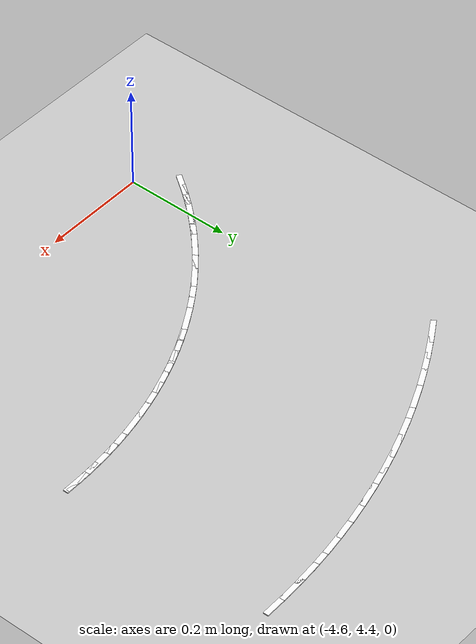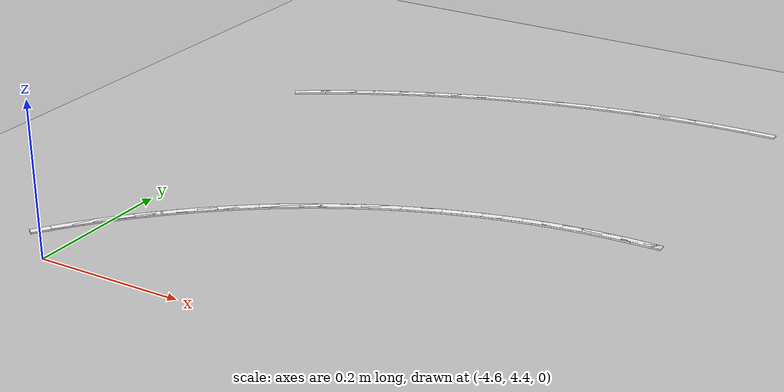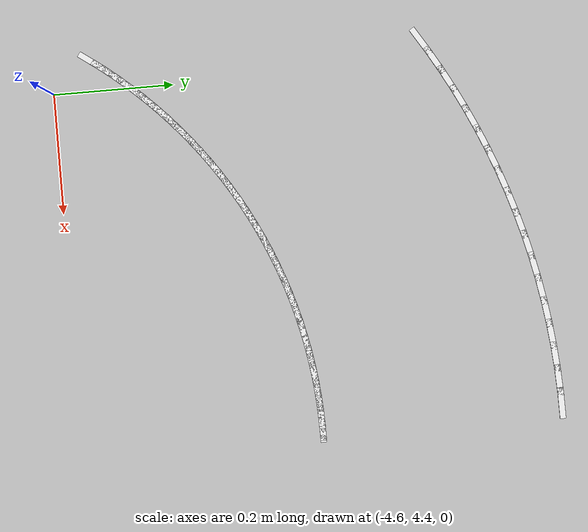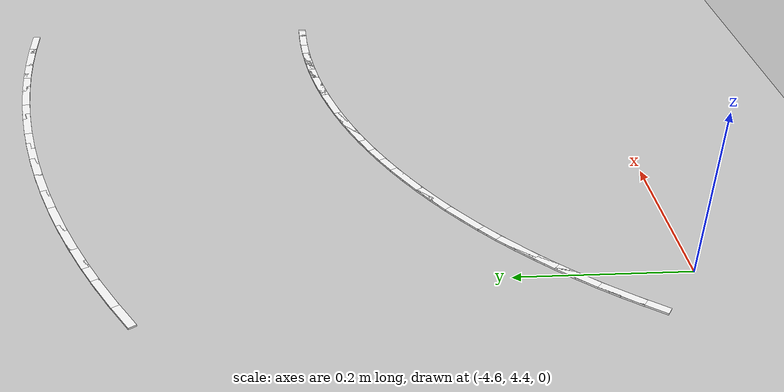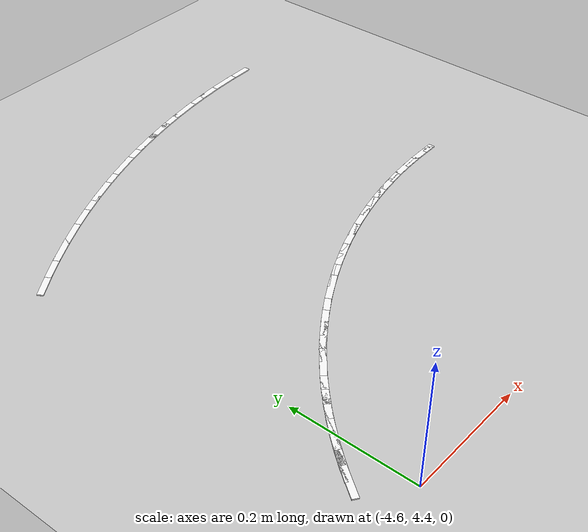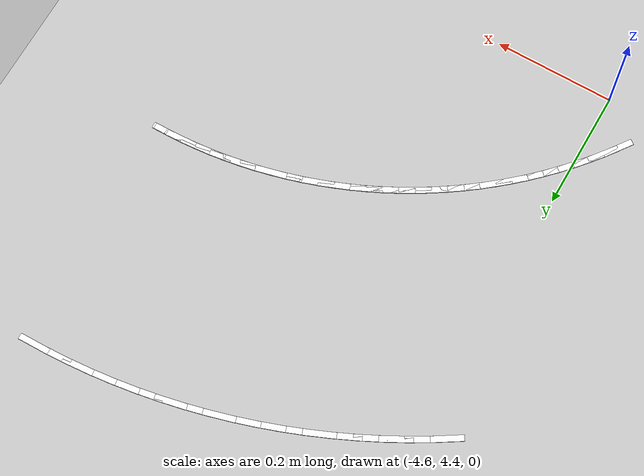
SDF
<sdf version="1.7">
 <world name="default">
  <model name="ground_plane">
   <static>1</static>
   <link name="link">
    <collision name="collision">
     <geometry><plane><normal>0 0 1</normal><size>100 100</size></plane></geometry>
     <surface>
      <contact><collide_bitmask>65535</collide_bitmask></contact>
      <friction><ode><mu>100</mu><mu2>50</mu2></ode></friction>
     </surface>
    </collision>
    <visual name="visual">
     <cast_shadows>0</cast_shadows>
     <geometry><plane><normal>0 0 1</normal><size>100 100</size></plane></geometry>
     <material>
      <script><uri>file://media/materials/scripts/gazebo.material</uri><name>Gazebo/Grey</name></script>
     </material>
    </visual>
   </link>
  </model>
  <model name="lane_line_right_249">
   <static>1</static>
   <link name="link">
    <pose>0 0 -0.004 0 -0 0</pose>
    <visual name="visual">
     <geometry><box><size>0.02 0.01 0.01</size></box></geometry>
     <material><ambient>1 1 1 1</ambient><diffuse>1 1 1 1</diffuse></material>
    </visual>
    <collision name="collision"><geometry><box><size>0.02 0.01 0.01</size></box></geometry></collision>
   </link>
   <pose>-4 4.8 0 0 -0 0</pose>
  </model>
  <model name="lane_line_left_250">
   <static>1</static>
   <link name="link">
    <pose>0 0 -0.004 0 -0 0</pose>
    <visual name="visual">
     <geometry><box><size>0.0521 0.01 0.01</size></box></geometry>
     <material><ambient>1 1 1 1</ambient><diffuse>1 1 1 1</diffuse></material>
    </visual>
    <collision name="collision"><geometry><box><size>0.0521 0.01 0.01</size></box></geometry></collision>
   </link>
   <pose>-4.01282 4.79977 0 0 0 -3.12556</pose>
  </model>
  <model name="lane_line_right_250">
   <static>1</static>
   <link name="link">
    <pose>0 0 -0.004 0 -0 0</pose>
    <visual name="visual">
     <geometry><box><size>0.0521 0.01 0.01</size></box></geometry>
     <material><ambient>1 1 1 1</ambient><diffuse>1 1 1 1</diffuse></material>
    </visual>
    <collision name="collision"><geometry><box><size>0.0521 0.01 0.01</size></box></geometry></collision>
   </link>
   <pose>-4.01923 5.19972 0 0 0 -3.12556</pose>
  </model>
  <model name="lane_line_left_251">
   <static>1</static>
   <link name="link">
    <pose>0 0 -0.004 0 -0 0</pose>
    <visual name="visual">
     <geometry><box><size>0.0521 0.01 0.01</size></box></geometry>
     <material><ambient>1 1 1 1</ambient><diffuse>1 1 1 1</diffuse></material>
    </visual>
    <collision name="collision"><geometry><box><size>0.0521 0.01 0.01</size></box></geometry></collision>
   </link>
   <pose>-4.03845 4.79895 0 0 0 -3.09351</pose>
  </model>
  <model name="lane_line_right_251">
   <static>1</static>
   <link name="link">
    <pose>0 0 -0.004 0 -0 0</pose>
    <visual name="visual">
     <geometry><box><size>0.0521 0.01 0.01</size></box></geometry>
     <material><ambient>1 1 1 1</ambient><diffuse>1 1 1 1</diffuse></material>
    </visual>
    <collision name="collision"><geometry><box><size>0.0521 0.01 0.01</size></box></geometry></collision>
   </link>
   <pose>-4.05767 5.19848 0 0 0 -3.09351</pose>
  </model>
  <model name="lane_line_left_252">
   <static>1</static>
   <link name="link">
    <pose>0 0 -0.004 0 -0 0</pose>
    <visual name="visual">
     <geometry><box><size>0.0521 0.01 0.01</size></box></geometry>
     <material><ambient>1 1 1 1</ambient><diffuse>1 1 1 1</diffuse></material>
    </visual>
    <collision name="collision"><geometry><box><size>0.0521 0.01 0.01</size></box></geometry></collision>
   </link>
   <pose>-4.06404 4.7973 0 0 0 -3.06145</pose>
  </model>
  <model name="lane_line_right_252">
   <static>1</static>
   <link name="link">
    <pose>0 0 -0.004 0 -0 0</pose>
    <visual name="visual">
     <geometry><box><size>0.0521 0.01 0.01</size></box></geometry>
     <material><ambient>1 1 1 1</ambient><diffuse>1 1 1 1</diffuse></material>
    </visual>
    <collision name="collision"><geometry><box><size>0.0521 0.01 0.01</size></box></geometry></collision>
   </link>
   <pose>-4.09606 5.19602 0 0 0 -3.06145</pose>
  </model>
  <model name="lane_line_left_253">
   <static>1</static>
   <link name="link">
    <pose>0 0 -0.004 0 -0 0</pose>
    <visual name="visual">
     <geometry><box><size>0.0521 0.01 0.01</size></box></geometry>
     <material><ambient>1 1 1 1</ambient><diffuse>1 1 1 1</diffuse></material>
    </visual>
    <collision name="collision"><geometry><box><size>0.0521 0.01 0.01</size></box></geometry></collision>
   </link>
   <pose>-4.08956 4.79484 0 0 0 -3.02939</pose>
  </model>
  <model name="lane_line_right_253">
   <static>1</static>
   <link name="link">
    <pose>0 0 -0.004 0 -0 0</pose>
    <visual name="visual">
     <geometry><box><size>0.0521 0.01 0.01</size></box></geometry>
     <material><ambient>1 1 1 1</ambient><diffuse>1 1 1 1</diffuse></material>
    </visual>
    <collision name="collision"><geometry><box><size>0.0521 0.01 0.01</size></box></geometry></collision>
   </link>
   <pose>-4.13434 5.19233 0 0 0 -3.02939</pose>
  </model>
  <model name="lane_line_left_254">
   <static>1</static>
   <link name="link">
    <pose>0 0 -0.004 0 -0 0</pose>
    <visual name="visual">
     <geometry><box><size>0.0521 0.01 0.01</size></box></geometry>
     <material><ambient>1 1 1 1</ambient><diffuse>1 1 1 1</diffuse></material>
    </visual>
    <collision name="collision"><geometry><box><size>0.0521 0.01 0.01</size></box></geometry></collision>
   </link>
   <pose>-4.11499 4.79156 0 0 0 -2.99734</pose>
  </model>
  <model name="lane_line_right_254">
   <static>1</static>
   <link name="link">
    <pose>0 0 -0.004 0 -0 0</pose>
    <visual name="visual">
     <geometry><box><size>0.0521 0.01 0.01</size></box></geometry>
     <material><ambient>1 1 1 1</ambient><diffuse>1 1 1 1</diffuse></material>
    </visual>
    <collision name="collision"><geometry><box><size>0.0521 0.01 0.01</size></box></geometry></collision>
   </link>
   <pose>-4.17249 5.18741 0 0 0 -2.99734</pose>
  </model>
  <model name="lane_line_left_255">
   <static>1</static>
   <link name="link">
    <pose>0 0 -0.004 0 -0 0</pose>
    <visual name="visual">
     <geometry><box><size>0.0521 0.01 0.01</size></box></geometry>
     <material><ambient>1 1 1 1</ambient><diffuse>1 1 1 1</diffuse></material>
    </visual>
    <collision name="collision"><geometry><box><size>0.0521 0.01 0.01</size></box></geometry></collision>
   </link>
   <pose>-4.1403 4.78747 0 0 0 -2.96528</pose>
  </model>
  <model name="lane_line_right_255">
   <static>1</static>
   <link name="link">
    <pose>0 0 -0.004 0 -0 0</pose>
    <visual name="visual">
     <geometry><box><size>0.0521 0.01 0.01</size></box></geometry>
     <material><ambient>1 1 1 1</ambient><diffuse>1 1 1 1</diffuse></material>
    </visual>
    <collision name="collision"><geometry><box><size>0.0521 0.01 0.01</size></box></geometry></collision>
   </link>
   <pose>-4.21046 5.18127 0 0 0 -2.96528</pose>
  </model>
  <model name="lane_line_left_256">
   <static>1</static>
   <link name="link">
    <pose>0 0 -0.004 0 -0 0</pose>
    <visual name="visual">
     <geometry><box><size>0.0521 0.01 0.01</size></box></geometry>
     <material><ambient>1 1 1 1</ambient><diffuse>1 1 1 1</diffuse></material>
    </visual>
    <collision name="collision"><geometry><box><size>0.0521 0.01 0.01</size></box></geometry></collision>
   </link>
   <pose>-4.16547 4.78257 0 0 0 -2.93322</pose>
  </model>
  <model name="lane_line_right_256">
   <static>1</static>
   <link name="link">
    <pose>0 0 -0.004 0 -0 0</pose>
    <visual name="visual">
     <geometry><box><size>0.0521 0.01 0.01</size></box></geometry>
     <material><ambient>1 1 1 1</ambient><diffuse>1 1 1 1</diffuse></material>
    </visual>
    <collision name="collision"><geometry><box><size>0.0521 0.01 0.01</size></box></geometry></collision>
   </link>
   <pose>-4.24821 5.17392 0 0 0 -2.93322</pose>
  </model>
  <model name="lane_line_left_257">
   <static>1</static>
   <link name="link">
    <pose>0 0 -0.004 0 -0 0</pose>
    <visual name="visual">
     <geometry><box><size>0.0521 0.01 0.01</size></box></geometry>
     <material><ambient>1 1 1 1</ambient><diffuse>1 1 1 1</diffuse></material>
    </visual>
    <collision name="collision"><geometry><box><size>0.0521 0.01 0.01</size></box></geometry></collision>
   </link>
   <pose>-4.19046 4.77686 0 0 0 -2.90116</pose>
  </model>
  <model name="lane_line_right_257">
   <static>1</static>
   <link name="link">
    <pose>0 0 -0.004 0 -0 0</pose>
    <visual name="visual">
     <geometry><box><size>0.0521 0.01 0.01</size></box></geometry>
     <material><ambient>1 1 1 1</ambient><diffuse>1 1 1 1</diffuse></material>
    </visual>
    <collision name="collision"><geometry><box><size>0.0521 0.01 0.01</size></box></geometry></collision>
   </link>
   <pose>-4.28571 5.16536 0 0 0 -2.90116</pose>
  </model>
  <model name="lane_line_left_258">
   <static>1</static>
   <link name="link">
    <pose>0 0 -0.004 0 -0 0</pose>
    <visual name="visual">
     <geometry><box><size>0.0521 0.01 0.01</size></box></geometry>
     <material><ambient>1 1 1 1</ambient><diffuse>1 1 1 1</diffuse></material>
    </visual>
    <collision name="collision"><geometry><box><size>0.0521 0.01 0.01</size></box></geometry></collision>
   </link>
   <pose>-4.21527 4.77036 0 0 0 -2.86911</pose>
  </model>
  <model name="lane_line_right_258">
   <static>1</static>
   <link name="link">
    <pose>0 0 -0.004 0 -0 0</pose>
    <visual name="visual">
     <geometry><box><size>0.0521 0.01 0.01</size></box></geometry>
     <material><ambient>1 1 1 1</ambient><diffuse>1 1 1 1</diffuse></material>
    </visual>
    <collision name="collision"><geometry><box><size>0.0521 0.01 0.01</size></box></geometry></collision>
   </link>
   <pose>-4.32292 5.1556 0 0 0 -2.86911</pose>
  </model>
  <model name="lane_line_left_259">
   <static>1</static>
   <link name="link">
    <pose>0 0 -0.004 0 -0 0</pose>
    <visual name="visual">
     <geometry><box><size>0.0521 0.01 0.01</size></box></geometry>
     <material><ambient>1 1 1 1</ambient><diffuse>1 1 1 1</diffuse></material>
    </visual>
    <collision name="collision"><geometry><box><size>0.0521 0.01 0.01</size></box></geometry></collision>
   </link>
   <pose>-4.23985 4.76306 0 0 0 -2.83705</pose>
  </model>
  <model name="lane_line_right_259">
   <static>1</static>
   <link name="link">
    <pose>0 0 -0.004 0 -0 0</pose>
    <visual name="visual">
     <geometry><box><size>0.0521 0.01 0.01</size></box></geometry>
     <material><ambient>1 1 1 1</ambient><diffuse>1 1 1 1</diffuse></material>
    </visual>
    <collision name="collision"><geometry><box><size>0.0521 0.01 0.01</size></box></geometry></collision>
   </link>
   <pose>-4.35979 5.14466 0 0 0 -2.83705</pose>
  </model>
  <model name="lane_line_left_260">
   <static>1</static>
   <link name="link">
    <pose>0 0 -0.004 0 -0 0</pose>
    <visual name="visual">
     <geometry><box><size>0.0521 0.01 0.01</size></box></geometry>
     <material><ambient>1 1 1 1</ambient><diffuse>1 1 1 1</diffuse></material>
    </visual>
    <collision name="collision"><geometry><box><size>0.0521 0.01 0.01</size></box></geometry></collision>
   </link>
   <pose>-4.26418 4.75499 0 0 0 -2.80499</pose>
  </model>
  <model name="lane_line_right_260">
   <static>1</static>
   <link name="link">
    <pose>0 0 -0.004 0 -0 0</pose>
    <visual name="visual">
     <geometry><box><size>0.0521 0.01 0.01</size></box></geometry>
     <material><ambient>1 1 1 1</ambient><diffuse>1 1 1 1</diffuse></material>
    </visual>
    <collision name="collision"><geometry><box><size>0.0521 0.01 0.01</size></box></geometry></collision>
   </link>
   <pose>-4.39629 5.13254 0 0 0 -2.80499</pose>
  </model>
  <model name="lane_line_left_261">
   <static>1</static>
   <link name="link">
    <pose>0 0 -0.004 0 -0 0</pose>
    <visual name="visual">
     <geometry><box><size>0.0521 0.01 0.01</size></box></geometry>
     <material><ambient>1 1 1 1</ambient><diffuse>1 1 1 1</diffuse></material>
    </visual>
    <collision name="collision"><geometry><box><size>0.0521 0.01 0.01</size></box></geometry></collision>
   </link>
   <pose>-4.28824 4.74613 0 0 0 -2.77294</pose>
  </model>
  <model name="lane_line_right_261">
   <static>1</static>
   <link name="link">
    <pose>0 0 -0.004 0 -0 0</pose>
    <visual name="visual">
     <geometry><box><size>0.0521 0.01 0.01</size></box></geometry>
     <material><ambient>1 1 1 1</ambient><diffuse>1 1 1 1</diffuse></material>
    </visual>
    <collision name="collision"><geometry><box><size>0.0521 0.01 0.01</size></box></geometry></collision>
   </link>
   <pose>-4.43239 5.11926 0 0 0 -2.77294</pose>
  </model>
  <model name="lane_line_left_262">
   <static>1</static>
   <link name="link">
    <pose>0 0 -0.004 0 -0 0</pose>
    <visual name="visual">
     <geometry><box><size>0.0521 0.01 0.01</size></box></geometry>
     <material><ambient>1 1 1 1</ambient><diffuse>1 1 1 1</diffuse></material>
    </visual>
    <collision name="collision"><geometry><box><size>0.0521 0.01 0.01</size></box></geometry></collision>
   </link>
   <pose>-4.31201 4.73651 0 0 0 -2.74088</pose>
  </model>
  <model name="lane_line_right_262">
   <static>1</static>
   <link name="link">
    <pose>0 0 -0.004 0 -0 0</pose>
    <visual name="visual">
     <geometry><box><size>0.0521 0.01 0.01</size></box></geometry>
     <material><ambient>1 1 1 1</ambient><diffuse>1 1 1 1</diffuse></material>
    </visual>
    <collision name="collision"><geometry><box><size>0.0521 0.01 0.01</size></box></geometry></collision>
   </link>
   <pose>-4.46804 5.10482 0 0 0 -2.74088</pose>
  </model>
  <model name="lane_line_left_263">
   <static>1</static>
   <link name="link">
    <pose>0 0 -0.004 0 -0 0</pose>
    <visual name="visual">
     <geometry><box><size>0.0521 0.01 0.01</size></box></geometry>
     <material><ambient>1 1 1 1</ambient><diffuse>1 1 1 1</diffuse></material>
    </visual>
    <collision name="collision"><geometry><box><size>0.0521 0.01 0.01</size></box></geometry></collision>
   </link>
   <pose>-4.33546 4.72613 0 0 0 -2.70882</pose>
  </model>
  <model name="lane_line_right_263">
   <static>1</static>
   <link name="link">
    <pose>0 0 -0.004 0 -0 0</pose>
    <visual name="visual">
     <geometry><box><size>0.0521 0.01 0.01</size></box></geometry>
     <material><ambient>1 1 1 1</ambient><diffuse>1 1 1 1</diffuse></material>
    </visual>
    <collision name="collision"><geometry><box><size>0.0521 0.01 0.01</size></box></geometry></collision>
   </link>
   <pose>-4.50321 5.08925 0 0 0 -2.70882</pose>
  </model>
  <model name="lane_line_left_264">
   <static>1</static>
   <link name="link">
    <pose>0 0 -0.004 0 -0 0</pose>
    <visual name="visual">
     <geometry><box><size>0.0521 0.01 0.01</size></box></geometry>
     <material><ambient>1 1 1 1</ambient><diffuse>1 1 1 1</diffuse></material>
    </visual>
    <collision name="collision"><geometry><box><size>0.0521 0.01 0.01</size></box></geometry></collision>
   </link>
   <pose>-4.35856 4.715 0 0 0 -2.67677</pose>
  </model>
  <model name="lane_line_right_264">
   <static>1</static>
   <link name="link">
    <pose>0 0 -0.004 0 -0 0</pose>
    <visual name="visual">
     <geometry><box><size>0.0521 0.01 0.01</size></box></geometry>
     <material><ambient>1 1 1 1</ambient><diffuse>1 1 1 1</diffuse></material>
    </visual>
    <collision name="collision"><geometry><box><size>0.0521 0.01 0.01</size></box></geometry></collision>
   </link>
   <pose>-4.53786 5.07256 0 0 0 -2.67677</pose>
  </model>
  <model name="lane_line_left_265">
   <static>1</static>
   <link name="link">
    <pose>0 0 -0.004 0 -0 0</pose>
    <visual name="visual">
     <geometry><box><size>0.0521 0.01 0.01</size></box></geometry>
     <material><ambient>1 1 1 1</ambient><diffuse>1 1 1 1</diffuse></material>
    </visual>
    <collision name="collision"><geometry><box><size>0.0521 0.01 0.01</size></box></geometry></collision>
   </link>
   <pose>-4.38129 4.70314 0 0 0 -2.64471</pose>
  </model>
  <model name="lane_line_right_265">
   <static>1</static>
   <link name="link">
    <pose>0 0 -0.004 0 -0 0</pose>
    <visual name="visual">
     <geometry><box><size>0.0521 0.01 0.01</size></box></geometry>
     <material><ambient>1 1 1 1</ambient><diffuse>1 1 1 1</diffuse></material>
    </visual>
    <collision name="collision"><geometry><box><size>0.0521 0.01 0.01</size></box></geometry></collision>
   </link>
   <pose>-4.57197 5.05477 0 0 0 -2.64471</pose>
  </model>
  <model name="lane_line_left_266">
   <static>1</static>
   <link name="link">
    <pose>0 0 -0.004 0 -0 0</pose>
    <visual name="visual">
     <geometry><box><size>0.0521 0.01 0.01</size></box></geometry>
     <material><ambient>1 1 1 1</ambient><diffuse>1 1 1 1</diffuse></material>
    </visual>
    <collision name="collision"><geometry><box><size>0.0521 0.01 0.01</size></box></geometry></collision>
   </link>
   <pose>-4.40363 4.69056 0 0 0 -2.61265</pose>
  </model>
  <model name="lane_line_right_266">
   <static>1</static>
   <link name="link">
    <pose>0 0 -0.004 0 -0 0</pose>
    <visual name="visual">
     <geometry><box><size>0.0521 0.01 0.01</size></box></geometry>
     <material><ambient>1 1 1 1</ambient><diffuse>1 1 1 1</diffuse></material>
    </visual>
    <collision name="collision"><geometry><box><size>0.0521 0.01 0.01</size></box></geometry></collision>
   </link>
   <pose>-4.60548 5.0359 0 0 0 -2.61265</pose>
  </model>
  <model name="lane_line_left_267">
   <static>1</static>
   <link name="link">
    <pose>0 0 -0.004 0 -0 0</pose>
    <visual name="visual">
     <geometry><box><size>0.0521 0.01 0.01</size></box></geometry>
     <material><ambient>1 1 1 1</ambient><diffuse>1 1 1 1</diffuse></material>
    </visual>
    <collision name="collision"><geometry><box><size>0.0521 0.01 0.01</size></box></geometry></collision>
   </link>
   <pose>-4.42556 4.67727 0 0 0 -2.58059</pose>
  </model>
  <model name="lane_line_right_267">
   <static>1</static>
   <link name="link">
    <pose>0 0 -0.004 0 -0 0</pose>
    <visual name="visual">
     <geometry><box><size>0.0521 0.01 0.01</size></box></geometry>
     <material><ambient>1 1 1 1</ambient><diffuse>1 1 1 1</diffuse></material>
    </visual>
    <collision name="collision"><geometry><box><size>0.0521 0.01 0.01</size></box></geometry></collision>
   </link>
   <pose>-4.63837 5.01596 0 0 0 -2.58059</pose>
  </model>
  <model name="lane_line_left_268">
   <static>1</static>
   <link name="link">
    <pose>0 0 -0.004 0 -0 0</pose>
    <visual name="visual">
     <geometry><box><size>0.0521 0.01 0.01</size></box></geometry>
     <material><ambient>1 1 1 1</ambient><diffuse>1 1 1 1</diffuse></material>
    </visual>
    <collision name="collision"><geometry><box><size>0.0521 0.01 0.01</size></box></geometry></collision>
   </link>
   <pose>-4.44705 4.66328 0 0 0 -2.54854</pose>
  </model>
  <model name="lane_line_left_269">
   <static>1</static>
   <link name="link">
    <pose>0 0 -0.004 0 -0 0</pose>
    <visual name="visual">
     <geometry><box><size>0.0521 0.01 0.01</size></box></geometry>
     <material><ambient>1 1 1 1</ambient><diffuse>1 1 1 1</diffuse></material>
    </visual>
    <collision name="collision"><geometry><box><size>0.0521 0.01 0.01</size></box></geometry></collision>
   </link>
   <pose>-4.46808 4.64861 0 0 0 -2.51648</pose>
  </model>
  <model name="lane_line_left_270">
   <static>1</static>
   <link name="link">
    <pose>0 0 -0.004 0 -0 0</pose>
    <visual name="visual">
     <geometry><box><size>0.0521 0.01 0.01</size></box></geometry>
     <material><ambient>1 1 1 1</ambient><diffuse>1 1 1 1</diffuse></material>
    </visual>
    <collision name="collision"><geometry><box><size>0.0521 0.01 0.01</size></box></geometry></collision>
   </link>
   <pose>-4.48862 4.63328 0 0 0 -2.48442</pose>
  </model>
  <model name="lane_line_left_271">
   <static>1</static>
   <link name="link">
    <pose>0 0 -0.004 0 -0 0</pose>
    <visual name="visual">
     <geometry><box><size>0.0521 0.01 0.01</size></box></geometry>
     <material><ambient>1 1 1 1</ambient><diffuse>1 1 1 1</diffuse></material>
    </visual>
    <collision name="collision"><geometry><box><size>0.0521 0.01 0.01</size></box></geometry></collision>
   </link>
   <pose>-4.50867 4.61729 0 0 0 -2.45237</pose>
  </model>
  <model name="lane_line_left_272">
   <static>1</static>
   <link name="link">
    <pose>0 0 -0.004 0 -0 0</pose>
    <visual name="visual">
     <geometry><box><size>0.0521 0.01 0.01</size></box></geometry>
     <material><ambient>1 1 1 1</ambient><diffuse>1 1 1 1</diffuse></material>
    </visual>
    <collision name="collision"><geometry><box><size>0.0521 0.01 0.01</size></box></geometry></collision>
   </link>
   <pose>-4.52819 4.60067 0 0 0 -2.42031</pose>
  </model>
  <model name="lane_line_left_273">
   <static>1</static>
   <link name="link">
    <pose>0 0 -0.004 0 -0 0</pose>
    <visual name="visual">
     <geometry><box><size>0.0521 0.01 0.01</size></box></geometry>
     <material><ambient>1 1 1 1</ambient><diffuse>1 1 1 1</diffuse></material>
    </visual>
    <collision name="collision"><geometry><box><size>0.0521 0.01 0.01</size></box></geometry></collision>
   </link>
   <pose>-4.54718 4.58343 0 0 0 -2.38825</pose>
  </model>
  <model name="lane_line_left_274">
   <static>1</static>
   <link name="link">
    <pose>0 0 -0.004 0 -0 0</pose>
    <visual name="visual">
     <geometry><box><size>0.0521 0.01 0.01</size></box></geometry>
     <material><ambient>1 1 1 1</ambient><diffuse>1 1 1 1</diffuse></material>
    </visual>
    <collision name="collision"><geometry><box><size>0.0521 0.01 0.01</size></box></geometry></collision>
   </link>
   <pose>-4.56559 4.56559 0 0 0 -2.35619</pose>
  </model>
  <model name="lane_line_left_275">
   <static>1</static>
   <link name="link">
    <pose>0 0 -0.004 0 -0 0</pose>
    <visual name="visual">
     <geometry><box><size>0.0521 0.01 0.01</size></box></geometry>
     <material><ambient>1 1 1 1</ambient><diffuse>1 1 1 1</diffuse></material>
    </visual>
    <collision name="collision"><geometry><box><size>0.0521 0.01 0.01</size></box></geometry></collision>
   </link>
   <pose>-4.58343 4.54718 0 0 0 -2.32414</pose>
  </model>
  <model name="lane_line_left_276">
   <static>1</static>
   <link name="link">
    <pose>0 0 -0.004 0 -0 0</pose>
    <visual name="visual">
     <geometry><box><size>0.0521 0.01 0.01</size></box></geometry>
     <material><ambient>1 1 1 1</ambient><diffuse>1 1 1 1</diffuse></material>
    </visual>
    <collision name="collision"><geometry><box><size>0.0521 0.01 0.01</size></box></geometry></collision>
   </link>
   <pose>-4.60067 4.52819 0 0 0 -2.29208</pose>
  </model>
  <model name="lane_line_left_277">
   <static>1</static>
   <link name="link">
    <pose>0 0 -0.004 0 -0 0</pose>
    <visual name="visual">
     <geometry><box><size>0.0521 0.01 0.01</size></box></geometry>
     <material><ambient>1 1 1 1</ambient><diffuse>1 1 1 1</diffuse></material>
    </visual>
    <collision name="collision"><geometry><box><size>0.0521 0.01 0.01</size></box></geometry></collision>
   </link>
   <pose>-4.61729 4.50867 0 0 0 -2.26002</pose>
  </model>
  <model name="lane_line_left_278">
   <static>1</static>
   <link name="link">
    <pose>0 0 -0.004 0 -0 0</pose>
    <visual name="visual">
     <geometry><box><size>0.0521 0.01 0.01</size></box></geometry>
     <material><ambient>1 1 1 1</ambient><diffuse>1 1 1 1</diffuse></material>
    </visual>
    <collision name="collision"><geometry><box><size>0.0521 0.01 0.01</size></box></geometry></collision>
   </link>
   <pose>-4.63328 4.48862 0 0 0 -2.22797</pose>
  </model>
  <model name="lane_line_left_279">
   <static>1</static>
   <link name="link">
    <pose>0 0 -0.004 0 -0 0</pose>
    <visual name="visual">
     <geometry><box><size>0.0521 0.01 0.01</size></box></geometry>
     <material><ambient>1 1 1 1</ambient><diffuse>1 1 1 1</diffuse></material>
    </visual>
    <collision name="collision"><geometry><box><size>0.0521 0.01 0.01</size></box></geometry></collision>
   </link>
   <pose>-4.64861 4.46808 0 0 0 -2.19591</pose>
  </model>
 </world>
</sdf>
